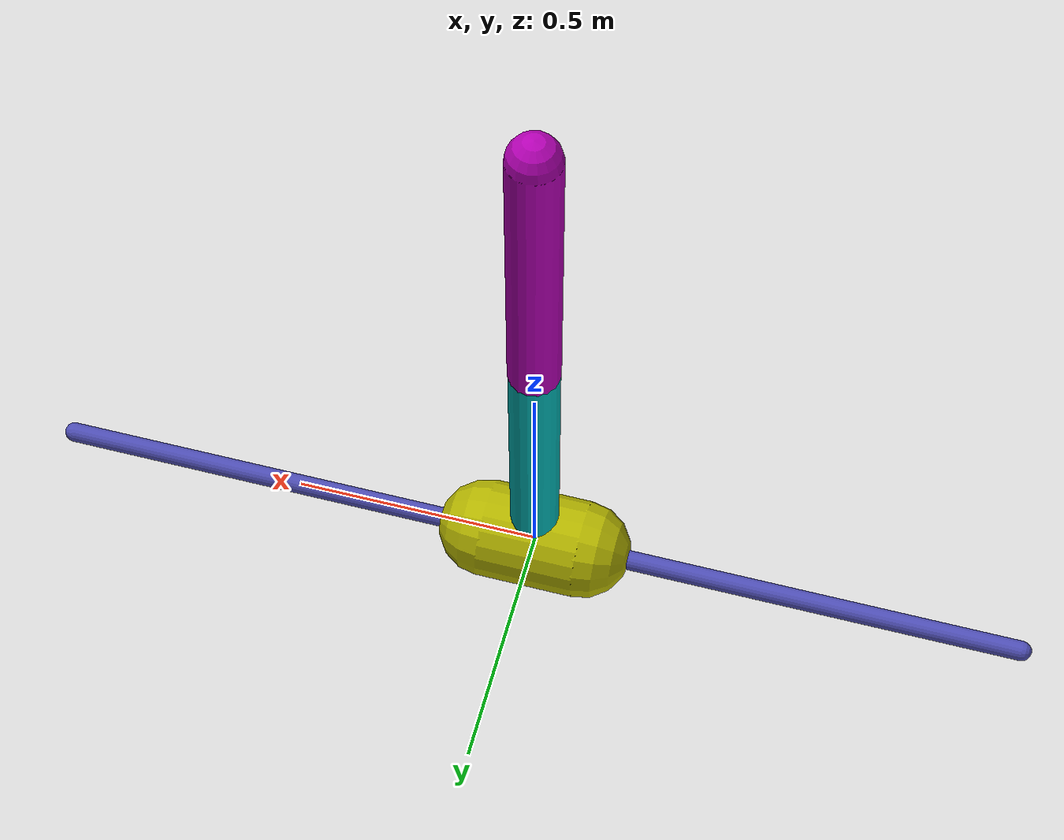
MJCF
<mujoco model="acrobot">
  <compiler inertiafromgeom="true"/>
  <default>
    <joint armature="0" damping="0.1" limited="true"/>
    <geom contype="0" friction="1 0.1 0.1" rgba="0.7 0.7 0 1"/>
    <tendon/>
    <!-- TODO: check control range-->
    <motor ctrlrange="-3 3"/>
  </default>
  <option gravity="0 0 -9.81" integrator="RK4" timestep="0.02"/>
  <size nstack="3000"/>
  <worldbody>
    <!--geom name="ground" type="plane" pos="0 0 0" /-->
    <geom name="rail" pos="0 0 0" quat="0.707 0 0.707 0" rgba="0.3 0.3 0.7 1" size="0.02 1" type="capsule"/>
    <body name="base" pos="0 0 0">
      <joint axis="1 0 0" limited="true" name="slider" pos="0 0 0" range="-1 1" type="slide"/>
      <geom name="base" pos="0 0 0" quat="0.707 0 0.707 0" size="0.1 0.1" type="capsule"/>
      <body name="pole1" pos="0 0 0">
	<joint axis="0 1 0" name="hinge1" pos="0 0 0" range="-359 359" type="hinge"/>
	<geom fromto="0 0 0 0.001 0 0.6" name="cpole" rgba="0 0.7 0.7 1" size="0.049 0.3" type="capsule"/>
	<body name="pole2" pos="0.001 0 0.6">
          <joint axis="0 1 0" name="hinge2" pos="0 0 0" range="-200 200" type="hinge"  />
          <geom name="cpole2" type="capsule" fromto="0 0 0 0 0 0.6" size="0.05 0.3" rgba="0.7 0 0.7 1"/>
        </body>
      </body>
    </body>
  </worldbody>
  <actuator>
    <motor gear="50" joint="hinge2" name="slide"/>
  </actuator>
</mujoco>
